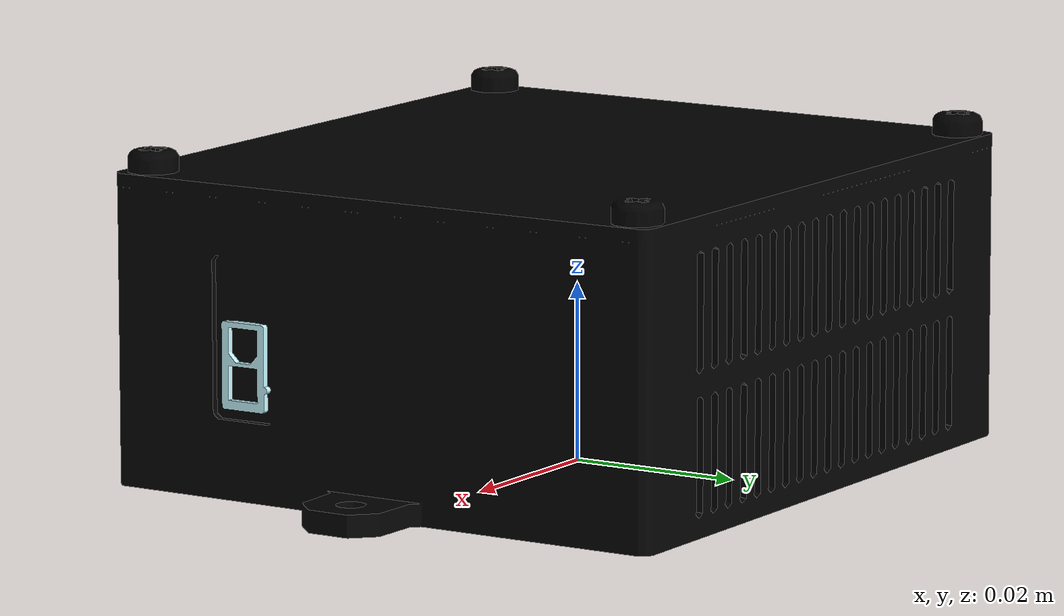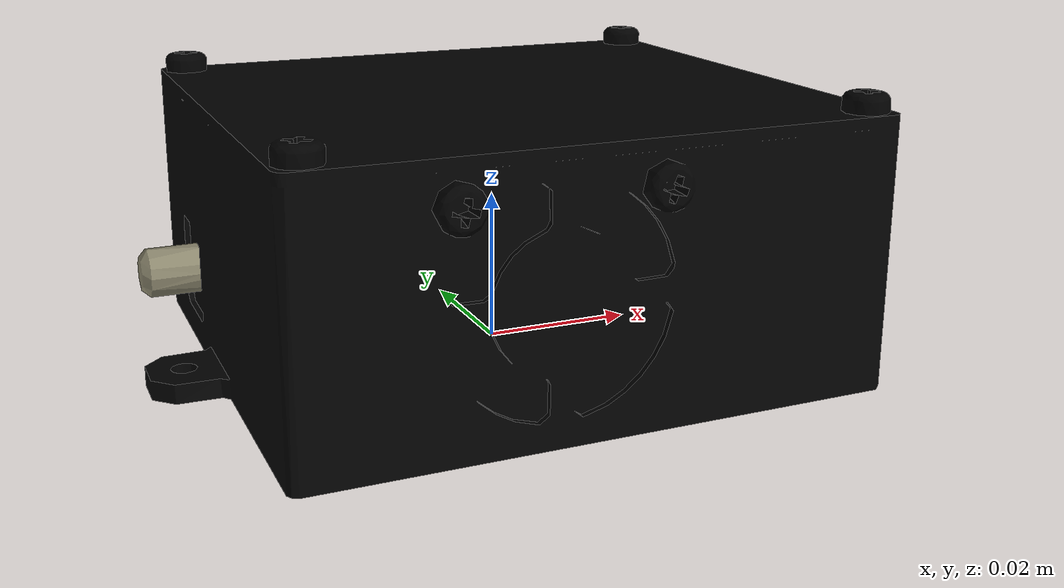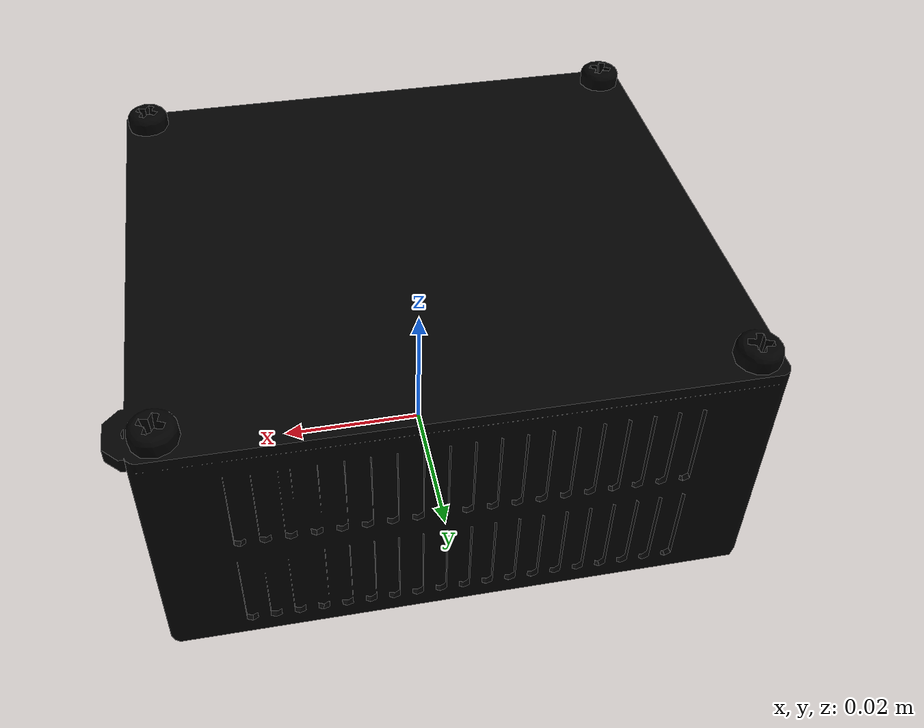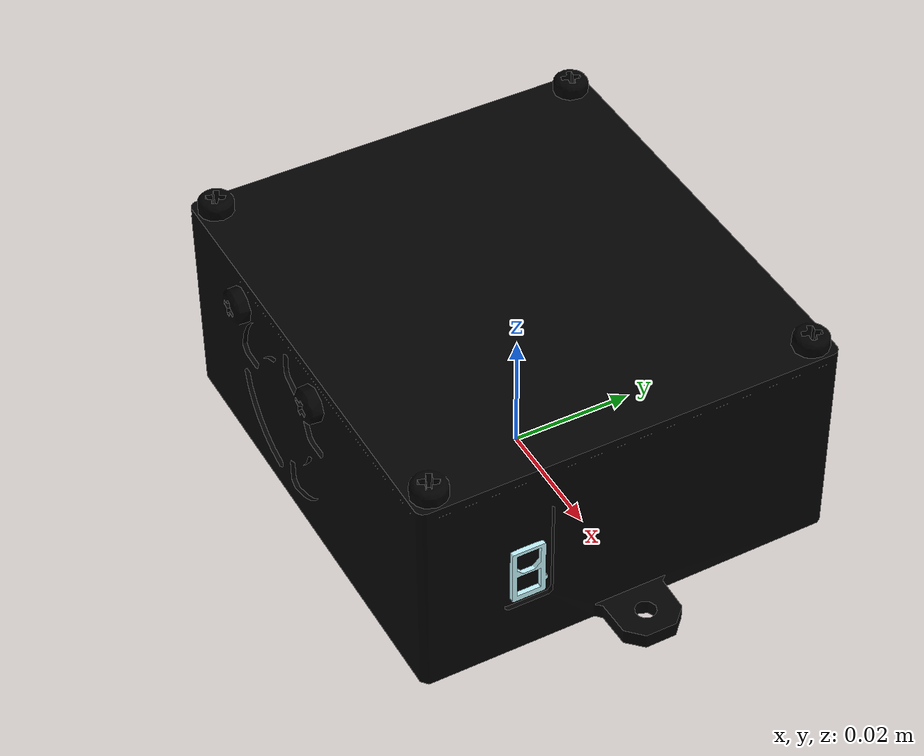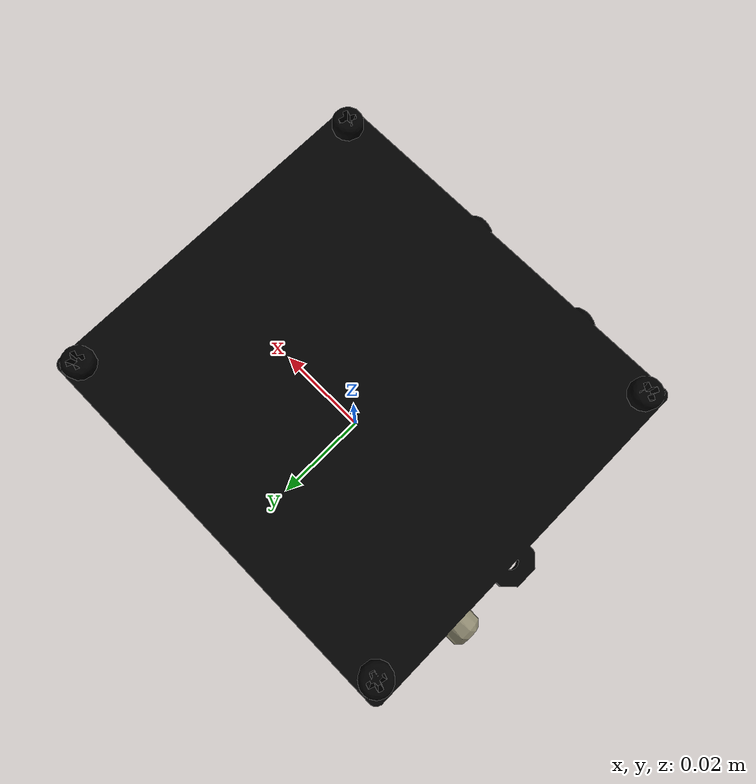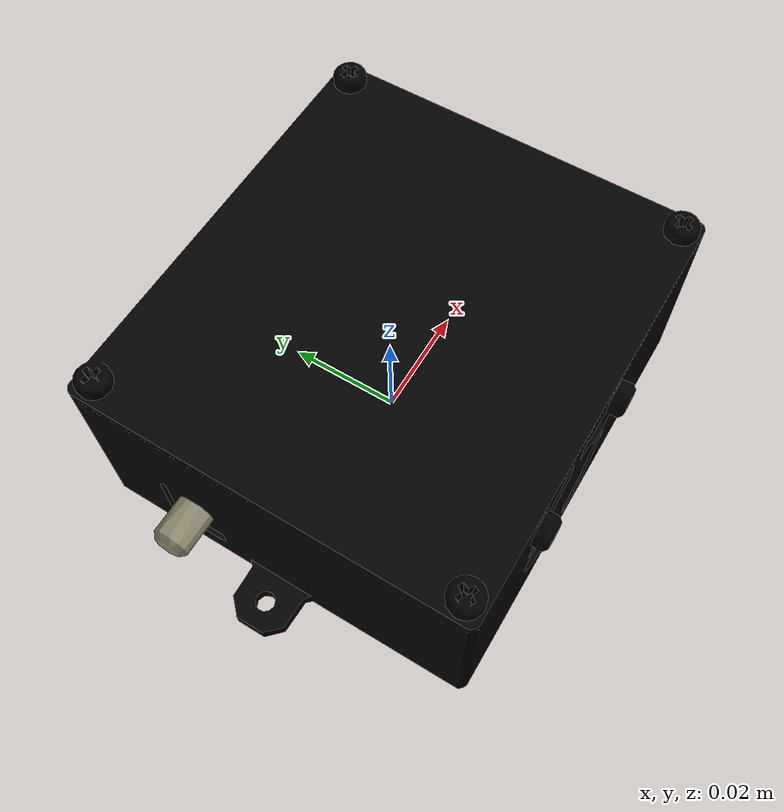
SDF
<?xml version="1.0" ?>
<sdf version="1.6">
  <model name="OC110">
    <static>true</static>
    <link name="link">
      <collision name="collision">
        <geometry>
          <mesh>
            <scale>1 1 1</scale>
            <uri>model://../meshes/OC110.dae</uri>
          </mesh>
        </geometry>
      </collision>
      <visual name="visual">
        <geometry>
          <mesh>
            <scale>1 1 1</scale>
            <uri>model://../meshes/OC110.dae</uri>
          </mesh>
        </geometry>
      </visual>
    </link>
  </model>
</sdf>
